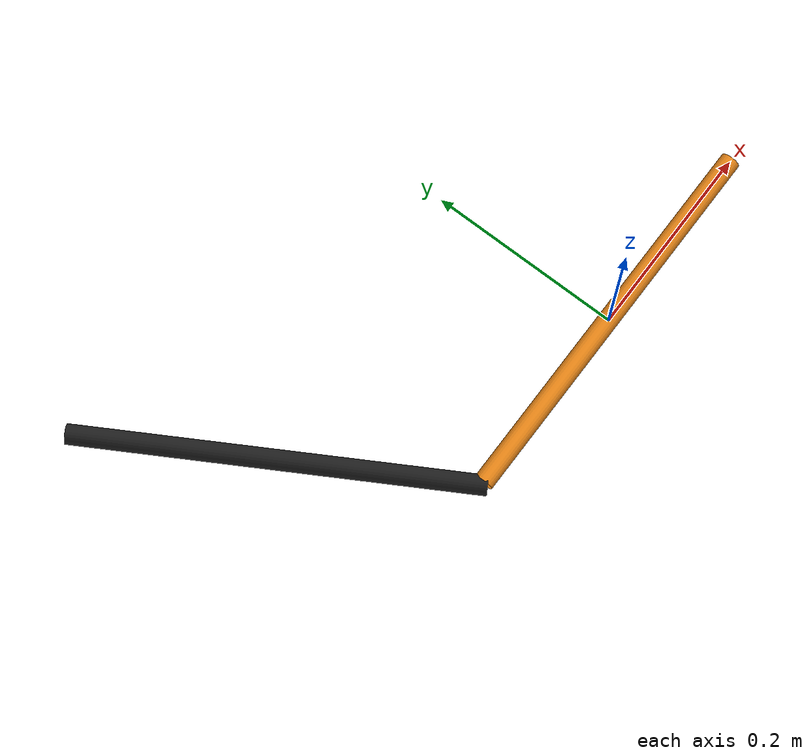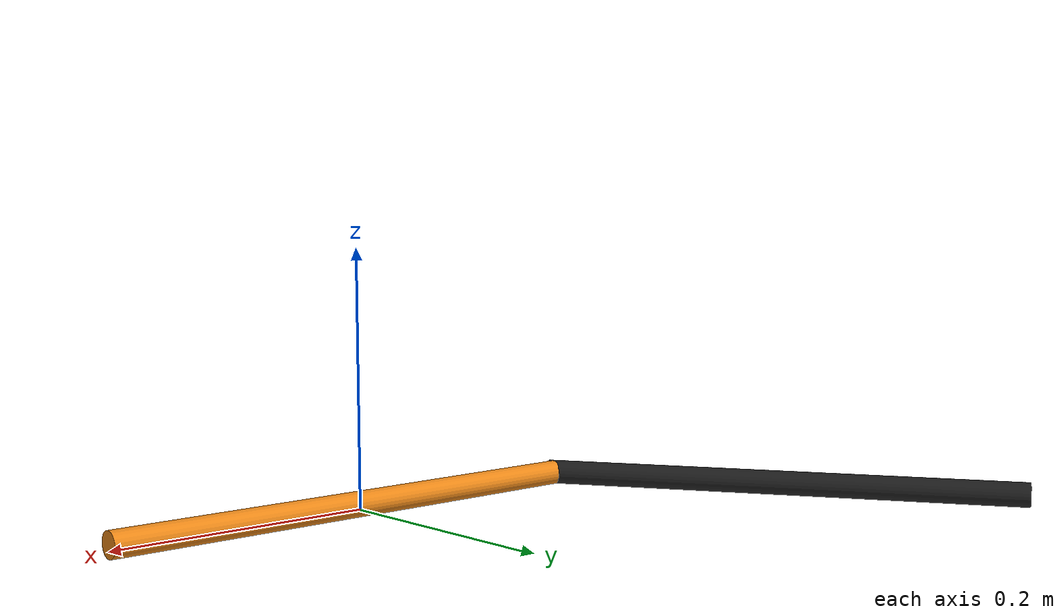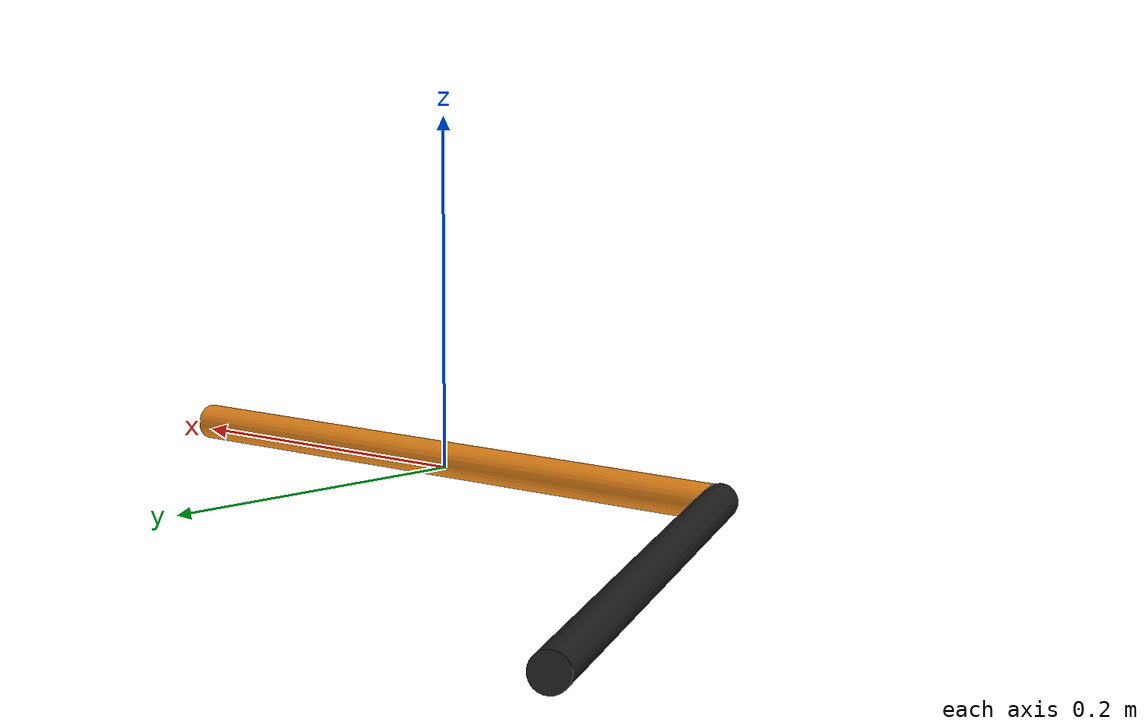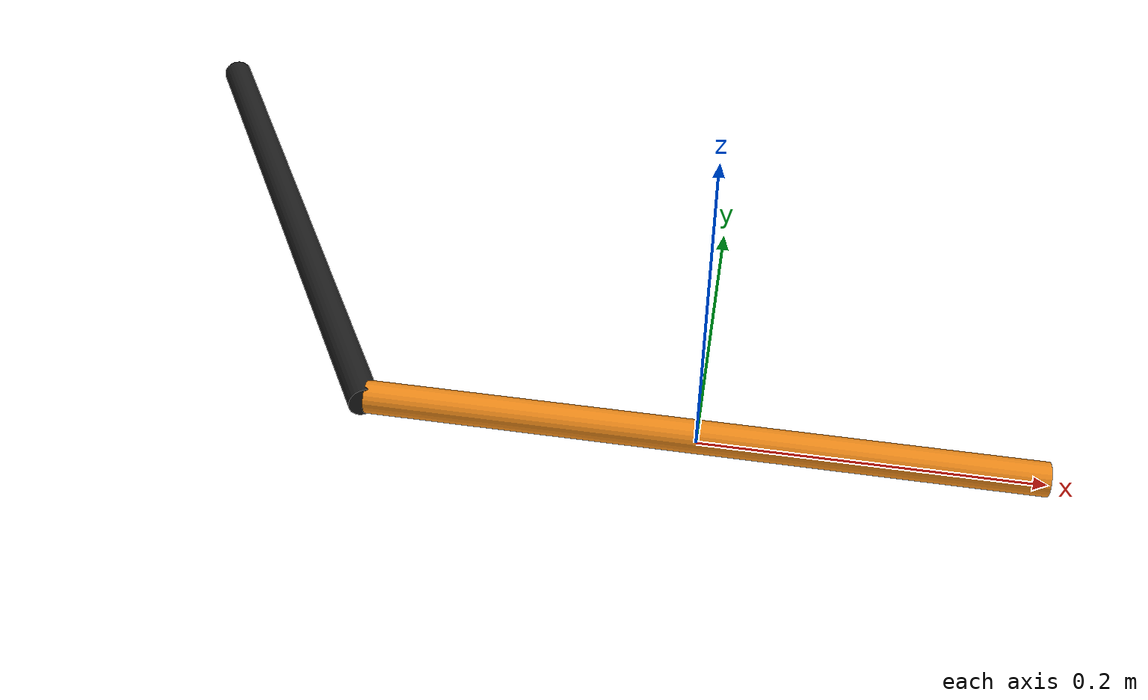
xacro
<?xml version="1.0"?>
<!-- Revolute-Revolute Manipulator -->
<robot name="fiver" xmlns:xacro="http://www.ros.org/wiki/xacro">

  <!-- Constants for robot dimensions -->
  <xacro:property name="PI" value="3.1415926535897931"/>
  <xacro:property name="mass" value="1" /> <!-- arbitrary value for mass -->

  <xacro:property name="height1" value="2" /> <!-- Link 1 -->
  <xacro:property name="height2" value="1" /> <!-- Link 2 -->
  <xacro:property name="height3" value="1" /> <!-- Link 2 -->
  <xacro:property name="camera_link" value="0.05" /> <!-- Size of square 'camera' box -->
  <xacro:property name="axel_offset" value="0.05" /> <!-- Space btw top of beam and the each joint -->
  <xacro:property name="width" value="0.01"/> <!-- Square dimensions (widthxwidth) of beams -->
  <xacro:property name="link1" value="0.4"/> <!-- Link 1 -->
  <xacro:property name="link2" value="0.4"/> <!-- Link 2 -->
  <xacro:property name="link3" value="0.250"/> <!-- Link 3 -->
  <xacro:property name="link4" value="0.250"/> <!-- Link 4 -->
  <xacro:property name="link5" value="0.200"/> <!-- Link 5 -->

  <!-- Import all Gazebo-customization elements, including Gazebo colors -->
  <xacro:include filename="$(find fiver_description)/urdf/fiver.gazebo" />
  <!-- Import Rviz colors -->
  <xacro:include filename="$(find fiver_description)/urdf/materials.xacro" />

  <!-- Base Link -->
  <link name="link1">
    <collision>
      <origin xyz="0 0 ${width/2}" rpy="0 ${PI/2} 0"/>
      <geometry>
      <cylinder radius="${width-width/3}" length="${link1-link1/3}"/>
      </geometry>
    </collision>

    <visual>
      <origin xyz="0 0 ${width/2}" rpy="0 ${PI/2} 0"/>
      <geometry>
      <cylinder radius="${width}" length="${link1}"/>
      </geometry>
      <material name="orange"/>
    </visual>

    <inertial>
      <origin xyz="0 0 ${width/2}" rpy="0 ${PI/2} 0"/>
      <mass value="1"/>
      <inertia
	  ixx="${1/12 * 1 * link1*link1 }" ixy="0.0" ixz="0.0"
	  iyy="${1/12 * 1 * link1*link1 }" iyz="0.0"
	  izz="${1/12 * 1 * link1*link1 }"/>
    </inertial>
  </link>

<joint name="joint_1" type="revolute">
  <parent link="link1"/>
  <child link="link2"/>
  <origin xyz="${-link1/2} ${-width/2} 0" rpy="0 0 ${PI/6}"/>
  <axis xyz="0 0 1"/>
  <limit lower="-2.23607" upper="2.23607" effort="100" velocity="10"/>
</joint>

  <!-- Middle Link -->
  <link name="link2">
    <collision>
      <origin xyz="0 ${link2/2}  ${width/2}" rpy="${PI/2} 0 0"/>
      <geometry>
      <cylinder radius="${width-width/3}" length="${link2-link2/3}"/>
      </geometry>
      </collision>

    <visual>
       <origin xyz="0 ${link2/2}  ${width/2}" rpy="${PI/2} 0 0"/>
      <geometry>
      <cylinder radius="${width}" length="${link2}"/>
      </geometry>
      <material name="black"/>
    </visual>

    <inertial>
       <origin xyz="0 ${link2/2}  ${width/2}" rpy="${PI/2} 0 0"/>
      <mass value="${mass}"/>
      <inertia
	  ixx="${1/3 * 1 * link2*link2}" ixy="0.0" ixz="0.0"
	  iyy="${1/3 * 1 * link2*link2}" iyz="0.0"
	  izz="${1/3 * 1 * link2*link2}"/>
    </inertial>
  </link>

</robot>
